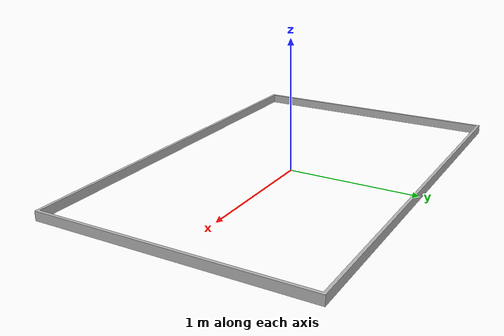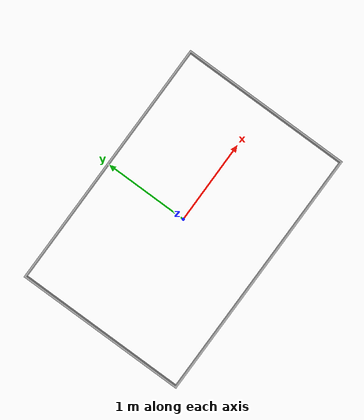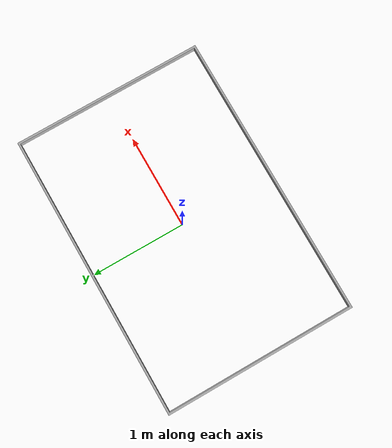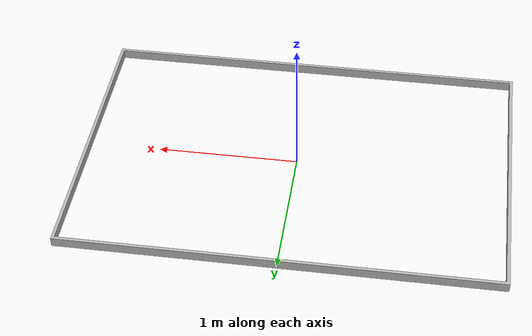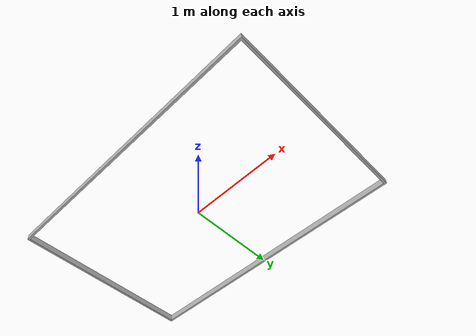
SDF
<?xml version="1.0" ?>
<sdf version="1.6">
  <model name="valla">
    <static>1</static>
    <link name="link">
      <visual name="valla_visual">
        <geometry>
          <mesh>
            <uri>model://valla/meshes/valla.stl</uri>
          </mesh>
        </geometry>
      </visual>
      <collision name="valla_collision">
        <geometry>
          <mesh>
            <uri>model://valla/meshes/valla.stl</uri>
          </mesh>
        </geometry>
      </collision>
    </link>
  </model>
</sdf>
